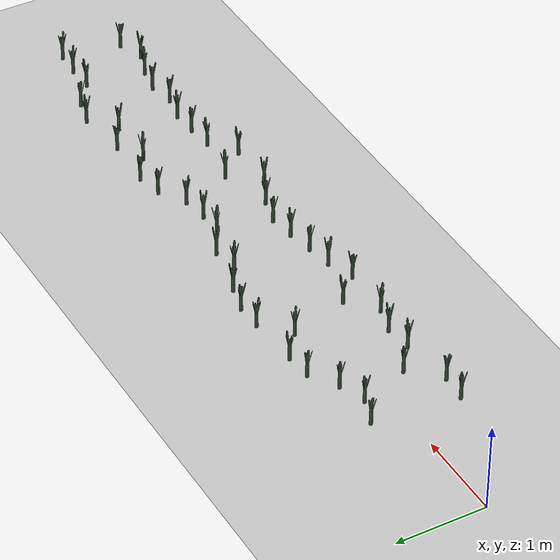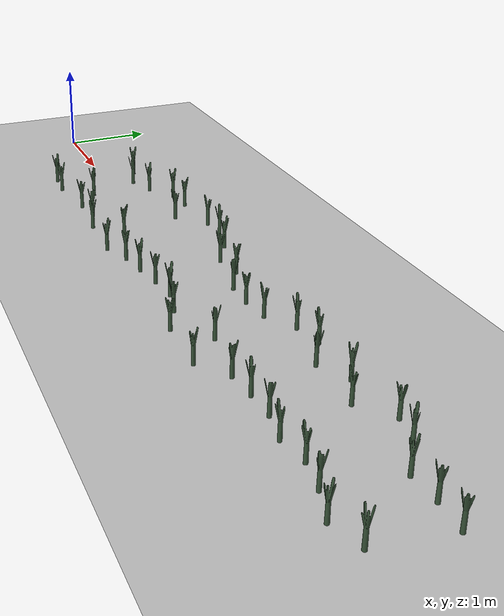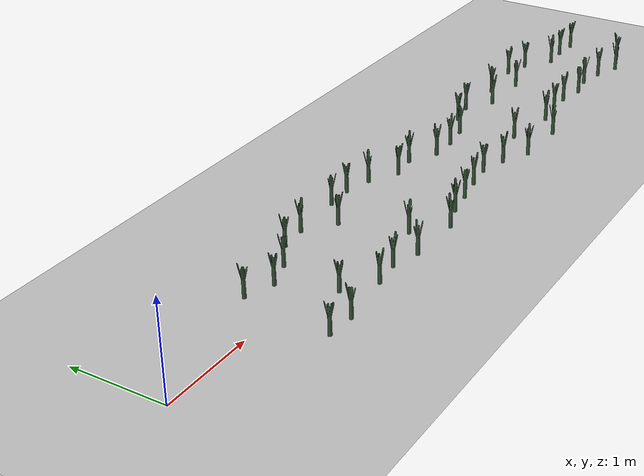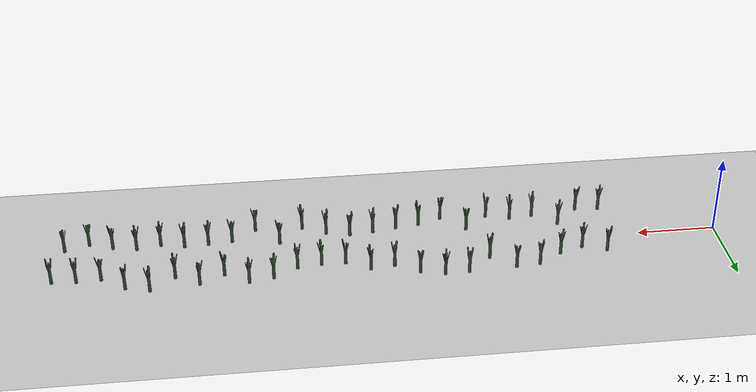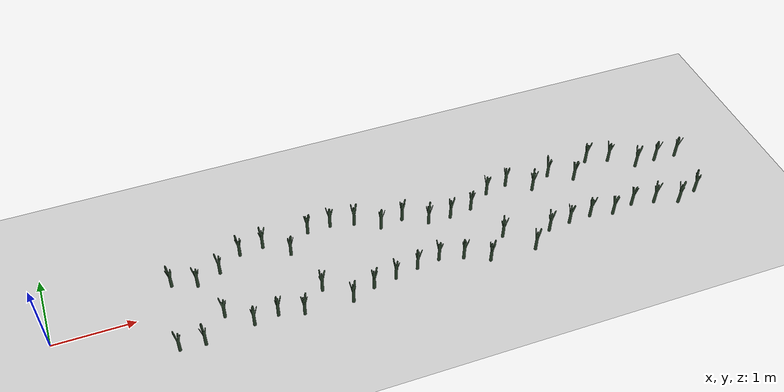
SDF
<sdf version="1.6">
 <world name="default">
  <light name="sun" type="directional">
   <pose>0 0 10 0 -0 0</pose>
   <diffuse>0.5 0.5 0.5 1</diffuse>
   <specular>0.1 0.1 0.1 1</specular>
   <attenuation>
    <range>1000</range>
    <constant>0.9</constant>
    <linear>0.01</linear>
    <quadratic>0.001</quadratic>
   </attenuation>
   <direction>0.9 0.5 -1</direction>
  </light>
  <scene><background>130 200 255 1</background><ambient>130 140 140 1</ambient></scene>
  <include><uri>model://dirt_plane</uri></include>
  <include><uri>model://Leek</uri><pose>1.500000 0.370973 0.15 0 0 108.910517</pose><static>0</static></include>
  <include><uri>model://Leek</uri><pose>1.800000 0.263166 0.15 0 0 46.729875</pose><static>0</static></include>
  <include><uri>model://Leek</uri><pose>2.100000 0.369605 0.15 0 0 -10.127283</pose><static>0</static></include>
  <include><uri>model://Leek</uri><pose>2.400000 0.562317 0.15 0 0 27.312022</pose><static>0</static></include>
  <include><uri>model://Leek</uri><pose>2.700000 0.589863 0.15 0 0 -6.028778</pose><static>0</static></include>
  <include><uri>model://Leek</uri><pose>3.000000 0.360018 0.15 0 0 -58.871099</pose><static>0</static></include>
  <include><uri>model://Leek</uri><pose>3.300000 0.630836 0.15 0 0 41.357336</pose><static>0</static></include>
  <include><uri>model://Leek</uri><pose>3.600000 0.642222 0.15 0 0 65.694665</pose><static>0</static></include>
  <include>
   <uri>model://Leek</uri>
   <pose>3.900000 0.567720 0.15 0 0 -106.222275</pose>
   <static>0</static>
  </include>
  <include><uri>model://Leek</uri><pose>4.200000 0.391948 0.15 0 0 -27.347423</pose><static>0</static></include>
  <include><uri>model://Leek</uri><pose>4.500000 0.435335 0.15 0 0 111.901207</pose><static>0</static></include>
  <include><uri>model://Leek</uri><pose>4.800000 0.268743 0.15 0 0 112.454742</pose><static>0</static></include>
  <include><uri>model://Leek</uri><pose>5.100000 0.264216 0.15 0 0 99.119269</pose><static>0</static></include>
  <include>
   <uri>model://Leek</uri>
   <pose>5.400000 0.306116 0.15 0 0 -172.307398</pose>
   <static>0</static>
  </include>
  <include><uri>model://Leek</uri><pose>5.700000 0.485236 0.15 0 0 128.478317</pose><static>0</static></include>
  <include><uri>model://Leek</uri><pose>6.000000 0.542581 0.15 0 0 -91.170746</pose><static>0</static></include>
  <include><uri>model://Leek</uri><pose>6.300000 0.351635 0.15 0 0 68.615769</pose><static>0</static></include>
  <include><uri>model://Leek</uri><pose>6.600000 0.511517 0.15 0 0 114.902616</pose><static>0</static></include>
  <include><uri>model://Leek</uri><pose>6.900000 0.338249 0.15 0 0 -78.285290</pose><static>0</static></include>
  <include><uri>model://Leek</uri><pose>7.200000 0.580553 0.15 0 0 105.034424</pose><static>0</static></include>
  <include><uri>model://Leek</uri><pose>7.500000 0.499303 0.15 0 0 71.462767</pose><static>0</static></include>
  <include><uri>model://Leek</uri><pose>7.800000 0.280613 0.15 0 0 94.393281</pose><static>0</static></include>
  <include><uri>model://Leek</uri><pose>8.100000 0.296988 0.15 0 0 -65.152187</pose><static>0</static></include>
  <include>
   <uri>model://Leek</uri>
   <pose>8.400000 0.278917 0.15 0 0 -178.309693</pose>
   <static>0</static>
  </include>
  <include><uri>model://Leek</uri><pose>1.394787 -0.583875 0.15 0 0 33.959598</pose><static>0</static></include>
  <include>
   <uri>model://Leek</uri>
   <pose>1.694787 -0.604548 0.15 0 0 102.352090</pose>
   <static>0</static>
  </include>
  <include>
   <uri>model://Leek</uri>
   <pose>1.994787 -0.294660 0.15 0 0 -179.591381</pose>
   <static>0</static>
  </include>
  <include>
   <uri>model://Leek</uri>
   <pose>2.294787 -0.525583 0.15 0 0 -115.004074</pose>
   <static>0</static>
  </include>
  <include><uri>model://Leek</uri><pose>2.594787 -0.486546 0.15 0 0 36.096947</pose><static>0</static></include>
  <include>
   <uri>model://Leek</uri>
   <pose>2.894787 -0.574061 0.15 0 0 -44.789868</pose>
   <static>0</static>
  </include>
  <include>
   <uri>model://Leek</uri>
   <pose>3.194787 -0.309451 0.15 0 0 119.648055</pose>
   <static>0</static>
  </include>
  <include><uri>model://Leek</uri><pose>3.494787 -0.595321 0.15 0 0 38.509202</pose><static>0</static></include>
  <include>
   <uri>model://Leek</uri>
   <pose>3.794787 -0.485343 0.15 0 0 -158.166494</pose>
   <static>0</static>
  </include>
  <include>
   <uri>model://Leek</uri>
   <pose>4.094787 -0.436881 0.15 0 0 -135.961867</pose>
   <static>0</static>
  </include>
  <include>
   <uri>model://Leek</uri>
   <pose>4.394787 -0.381706 0.15 0 0 -158.964334</pose>
   <static>0</static>
  </include>
  <include>
   <uri>model://Leek</uri>
   <pose>4.694787 -0.341610 0.15 0 0 -29.027984</pose>
   <static>0</static>
  </include>
  <include><uri>model://Leek</uri><pose>4.994787 -0.420788 0.15 0 0 -1.991094</pose><static>0</static></include>
  <include><uri>model://Leek</uri><pose>5.294787 -0.568971 0.15 0 0 86.660107</pose><static>0</static></include>
  <include><uri>model://Leek</uri><pose>5.594787 -0.263943 0.15 0 0 68.769469</pose><static>0</static></include>
  <include>
   <uri>model://Leek</uri>
   <pose>5.894787 -0.589704 0.15 0 0 -62.562157</pose>
   <static>0</static>
  </include>
  <include>
   <uri>model://Leek</uri>
   <pose>6.194787 -0.369192 0.15 0 0 -44.012308</pose>
   <static>0</static>
  </include>
  <include><uri>model://Leek</uri><pose>6.494787 -0.338444 0.15 0 0 40.546639</pose><static>0</static></include>
  <include>
   <uri>model://Leek</uri>
   <pose>6.794787 -0.323746 0.15 0 0 -133.851289</pose>
   <static>0</static>
  </include>
  <include>
   <uri>model://Leek</uri>
   <pose>7.094787 -0.385767 0.15 0 0 103.717398</pose>
   <static>0</static>
  </include>
  <include>
   <uri>model://Leek</uri>
   <pose>7.394787 -0.329975 0.15 0 0 166.636647</pose>
   <static>0</static>
  </include>
  <include>
   <uri>model://Leek</uri>
   <pose>7.694787 -0.387750 0.15 0 0 163.040246</pose>
   <static>0</static>
  </include>
  <include>
   <uri>model://Leek</uri>
   <pose>7.994787 -0.493282 0.15 0 0 176.338843</pose>
   <static>0</static>
  </include>
  <include>
   <uri>model://Leek</uri>
   <pose>8.294787 -0.391364 0.15 0 0 -11.179399</pose>
   <static>0</static>
  </include>
 </world>
</sdf>

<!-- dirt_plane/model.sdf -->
<sdf version="1.4">
<model name="dirt_plane">
  <static>true</static>
    <link name="link">
      <collision name="collision">
        <geometry>
          <plane>
            <normal>0 0 1</normal>
            <size>100 100</size>
          </plane>
        </geometry>
        <surface>
          <friction>
            <ode>
              <mu>100</mu>
              <mu2>50</mu2>
            </ode>
          </friction>
        </surface>
      </collision>
      <visual name="visual">
        <cast_shadows>false</cast_shadows>
        <geometry>
          <plane>
            <normal>0 0 1</normal>
            <size>100 100</size>
          </plane>
        </geometry>
        <material>
          <script>
            <uri>model://ground_plane/materials/scripts/my_ground_plane.material</uri>
            <uri>model://ground_plane/materials/textures</uri>
            <name>my_ground_plane/Dirt</name>
          </script>
        </material>
      </visual>
    </link>
  </model>
</sdf>

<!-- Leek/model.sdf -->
<sdf version='1.6'>
  <model name='Leek'>
    <link name='link'>
      <pose frame=''>0 0 0 0 -0 0</pose>
      <inertial>
        <mass>1</mass>
        <inertia>
          <ixx>0.145833</ixx>
          <ixy>0</ixy>
          <ixz>0</ixz>
          <iyy>0.145833</iyy>
          <iyz>0</iyz>
          <izz>0.125</izz>
        </inertia>
        <pose frame=''>0 0 0 0 -0 0</pose>
      </inertial>
      <self_collide>0</self_collide>
      <kinematic>0</kinematic>
      <gravity>1</gravity>
      <visual name='visual'>
        <geometry>
          <mesh>
            <uri>model://Leek/Poireau.dae</uri>
            <scale>1 1 1</scale>
          </mesh>
        </geometry>
        <material>
          <script>
            <name>Gazebo/Grey</name>
            <uri>file://media/materials/scripts/gazebo.material</uri>
          </script>
          <ambient>0.3 0.7 0.4 0</ambient>
          <diffuse>0.2 0.3 0.2 0</diffuse>
          <specular>0 0 0 1</specular>
          <emissive>0 0 0 1</emissive>
          <shader type='vertex'>
            <normal_map>__default__</normal_map>
          </shader>
        </material>
        <pose frame=''>0 0 -0.08 0 -0 0</pose>
        <cast_shadows>1</cast_shadows>
        <transparency>0</transparency>
      </visual>
      <collision name='collision'>
        <laser_retro>0</laser_retro>
        <max_contacts>10</max_contacts>
        <pose frame=''>0 0 0 0 -0 0</pose>
        <geometry>
          <cylinder>
            <radius>0.02</radius>
            <length>0.25</length>
          </cylinder>
        </geometry>
        <surface>
          <friction>
            <ode>
              <mu>1</mu>
              <mu2>1</mu2>
              <fdir1>0 0 0</fdir1>
              <slip1>0</slip1>
              <slip2>0</slip2>
            </ode>
            <torsional>
              <coefficient>1</coefficient>
              <patch_radius>0</patch_radius>
              <surface_radius>0</surface_radius>
              <use_patch_radius>1</use_patch_radius>
              <ode>
                <slip>0</slip>
              </ode>
            </torsional>
          </friction>
          <bounce>
            <restitution_coefficient>0</restitution_coefficient>
            <threshold>1e+06</threshold>
          </bounce>
          <contact>
            <collide_without_contact>0</collide_without_contact>
            <collide_without_contact_bitmask>1</collide_without_contact_bitmask>
            <collide_bitmask>1</collide_bitmask>
            <ode>
              <soft_cfm>0</soft_cfm>
              <soft_erp>0.2</soft_erp>
              <kp>1e+13</kp>
              <kd>1</kd>
              <max_vel>0.01</max_vel>
              <min_depth>0</min_depth>
            </ode>
            <bullet>
              <split_impulse>1</split_impulse>
              <split_impulse_penetration_threshold>-0.01</split_impulse_penetration_threshold>
              <soft_cfm>0</soft_cfm>
              <soft_erp>0.2</soft_erp>
              <kp>1e+13</kp>
              <kd>1</kd>
            </bullet>
          </contact>
        </surface>
      </collision>
    </link>
    <static>0</static>
    <allow_auto_disable>1</allow_auto_disable>
  </model>
</sdf>
